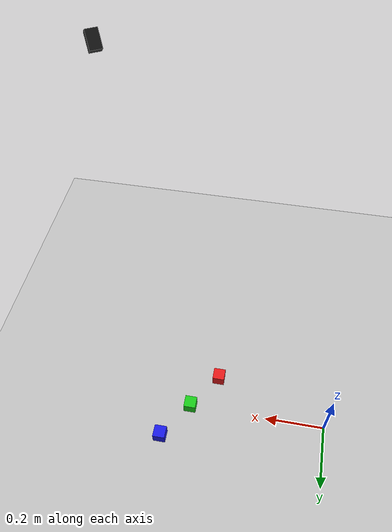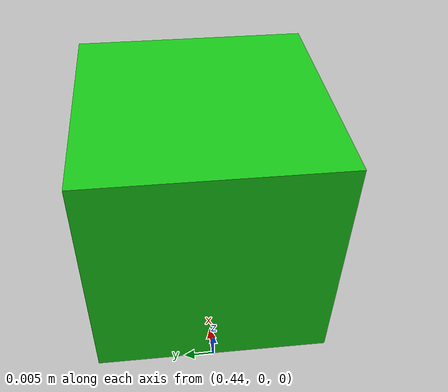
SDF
<?xml version="1.0" ?>
<sdf version="1.9">
  <world name="openvla_rgb_floor_world">

    <!-- 基础物理与场景 -->
    <gravity>0 0 -9.81</gravity>

    <physics name="1ms" type="ignored">
      <max_step_size>0.001</max_step_size>
      <real_time_factor>1.0</real_time_factor>
    </physics>

    <scene>
      <ambient>0.7 0.7 0.7 1</ambient>
      <background>0.95 0.95 0.95 1</background>
      <shadows>false</shadows>
    </scene>

    <plugin
    filename="gz-sim-physics-system"
    name="gz::sim::systems::Physics"/>

    <plugin
        filename="gz-sim-user-commands-system"
        name="gz::sim::systems::UserCommands"/>

    <plugin
        filename="gz-sim-scene-broadcaster-system"
        name="gz::sim::systems::SceneBroadcaster"/>

    <plugin
        filename="gz-sim-sensors-system"
        name="gz::sim::systems::Sensors">
        <render_engine>ogre2</render_engine>
    </plugin>

    <plugin
        filename="gz-sim-contact-system"
        name="gz::sim::systems::Contact"/>

    <!-- 光照 -->
    <light name="sun" type="directional">
      <cast_shadows>false</cast_shadows>
      <pose>0 0 10 0 0 0</pose>
      <diffuse>0.9 0.9 0.9 1</diffuse>
      <specular>0.2 0.2 0.2 1</specular>
      <attenuation>
        <range>1000</range>
        <constant>0.9</constant>
        <linear>0.01</linear>
        <quadratic>0.001</quadratic>
      </attenuation>
      <direction>-0.4 0.2 -1.0</direction>
    </light>

    <!-- 地面 -->
    <model name="ground_plane">
      <static>true</static>
      <link name="link">
        <collision name="collision">
          <geometry>
            <plane>
              <normal>0 0 1</normal>
              <size>6 6</size>
            </plane>
          </geometry>
        </collision>
        <visual name="visual">
          <geometry>
            <plane>
              <normal>0 0 1</normal>
              <size>6 6</size>
            </plane>
          </geometry>
          <material>
            <ambient>0.75 0.75 0.75 1</ambient>
            <diffuse>0.75 0.75 0.75 1</diffuse>
            <specular>0.05 0.05 0.05 1</specular>
          </material>
        </visual>
      </link>
    </model>

    <!-- 红色方块 -->
    <model name="red_block">
      <static>false</static>
      <pose>0.38 -0.12 0.02 0 0 0</pose>
      <link name="link">
        <inertial>
          <mass>0.05</mass>
          <inertia>
            <ixx>1.333e-5</ixx>
            <iyy>1.333e-5</iyy>
            <izz>1.333e-5</izz>
            <ixy>0</ixy>
            <ixz>0</ixz>
            <iyz>0</iyz>
          </inertia>
        </inertial>
        <collision name="collision">
          <geometry>
            <box>
              <size>0.04 0.04 0.04</size>
            </box>
          </geometry>
        </collision>
        <visual name="visual">
          <geometry>
            <box>
              <size>0.04 0.04 0.04</size>
            </box>
          </geometry>
          <material>
            <ambient>0.9 0.1 0.1 1</ambient>
            <diffuse>0.9 0.1 0.1 1</diffuse>
            <specular>0.1 0.1 0.1 1</specular>
          </material>
        </visual>
      </link>
    </model>

    <!-- 绿色方块 -->
    <model name="green_block">
      <static>false</static>
      <pose>0.46 0.00 0.02 0 0 0</pose>
      <link name="link">
        <inertial>
          <mass>0.05</mass>
          <inertia>
            <ixx>1.333e-5</ixx>
            <iyy>1.333e-5</iyy>
            <izz>1.333e-5</izz>
            <ixy>0</ixy>
            <ixz>0</ixz>
            <iyz>0</iyz>
          </inertia>
        </inertial>
        <collision name="collision">
          <geometry>
            <box>
              <size>0.04 0.04 0.04</size>
            </box>
          </geometry>
        </collision>
        <visual name="visual">
          <geometry>
            <box>
              <size>0.04 0.04 0.04</size>
            </box>
          </geometry>
          <material>
            <ambient>0.1 0.8 0.1 1</ambient>
            <diffuse>0.1 0.8 0.1 1</diffuse>
            <specular>0.1 0.1 0.1 1</specular>
          </material>
        </visual>
      </link>
    </model>

    <!-- 蓝色方块 -->
    <model name="blue_block">
      <static>false</static>
      <pose>0.54 0.12 0.02 0 0 0</pose>
      <link name="link">
        <inertial>
          <mass>0.05</mass>
          <inertia>
            <ixx>1.333e-5</ixx>
            <iyy>1.333e-5</iyy>
            <izz>1.333e-5</izz>
            <ixy>0</ixy>
            <ixz>0</ixz>
            <iyz>0</iyz>
          </inertia>
        </inertial>
        <collision name="collision">
          <geometry>
            <box>
              <size>0.04 0.04 0.04</size>
            </box>
          </geometry>
        </collision>
        <visual name="visual">
          <geometry>
            <box>
              <size>0.04 0.04 0.04</size>
            </box>
          </geometry>
          <material>
            <ambient>0.1 0.1 0.9 1</ambient>
            <diffuse>0.1 0.1 0.9 1</diffuse>
            <specular>0.1 0.1 0.1 1</specular>
          </material>
        </visual>
      </link>
    </model>

    <!-- 固定第三视角相机 -->
    <model name="front_camera">
      <static>true</static>
      <!-- x y z roll pitch yaw -->
      <pose>0.85 -0.65 0.95 0 0.90 2.10</pose>
      <link name="camera_link">

        <visual name="camera_body_visual">
          <geometry>
            <box>
              <size>0.06 0.04 0.04</size>
            </box>
          </geometry>
        <material>
          <ambient>0.05 0.05 0.05 1</ambient>
          <diffuse>0.10 0.10 0.10 1</diffuse>
          <specular>0.2 0.2 0.2 1</specular>
        </material>
        </visual>

        <sensor name="rgb_camera" type="camera">
          <always_on>true</always_on>
          <update_rate>10</update_rate>
          <visualize>true</visualize>
          <topic>/openvla/front_camera</topic>
          <camera>
            <horizontal_fov>1.047</horizontal_fov>
            <image>
              <width>640</width>
              <height>480</height>
              <format>R8G8B8</format>
            </image>
            <clip>
              <near>0.05</near>
              <far>10.0</far>
            </clip>
          </camera>
        </sensor>
      </link>
    </model>

  </world>
</sdf>
